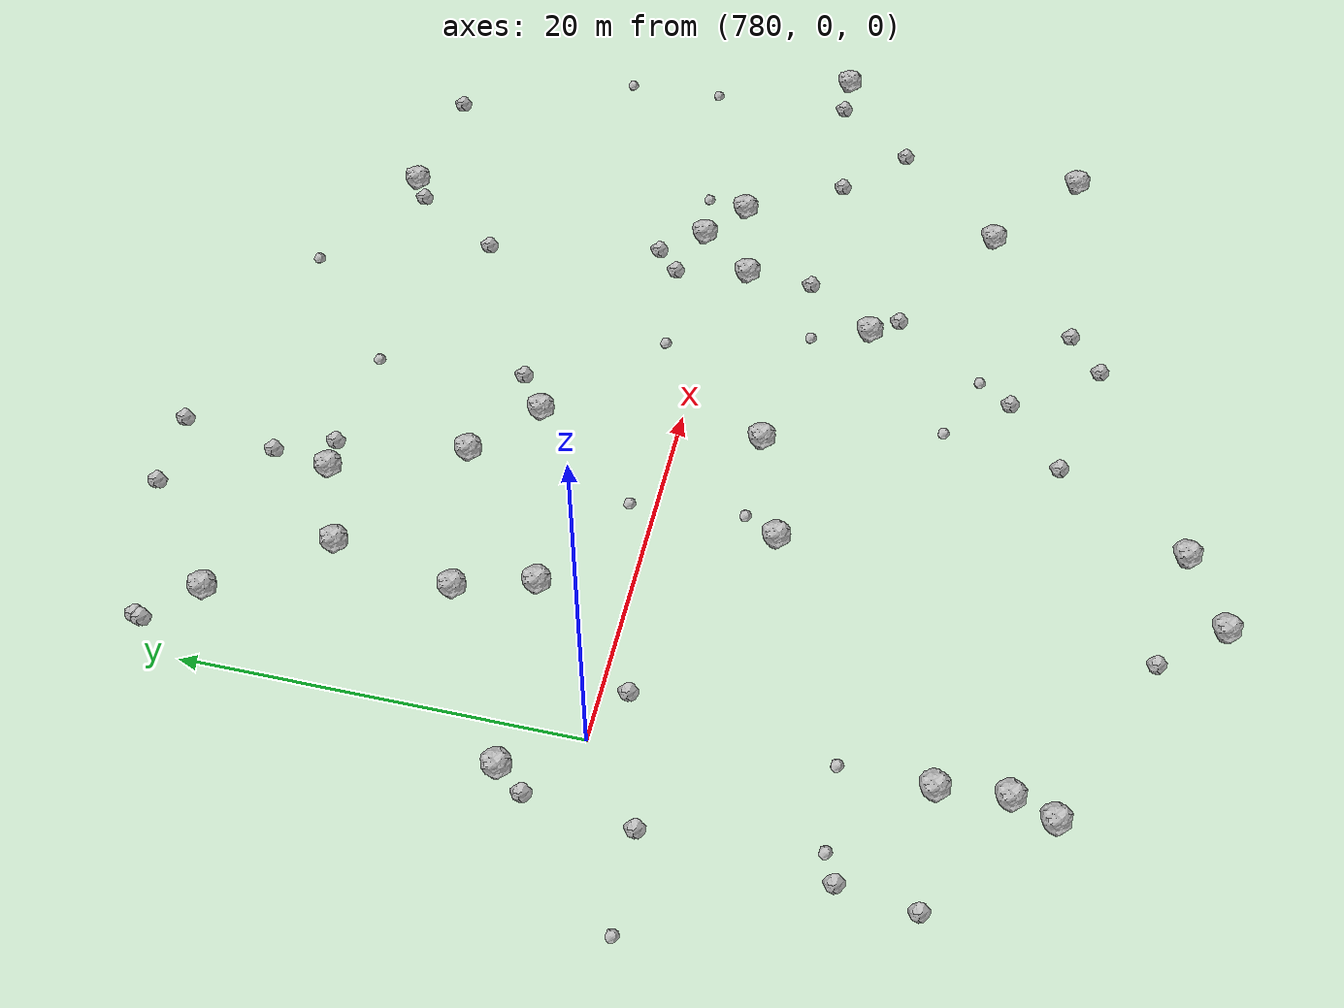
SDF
<sdf version="1.6">
 <world name="default">
  <include><uri>model://sun</uri></include>
  <model name="rock1_20_4">
   <include><uri>model://rock1</uri><pose>817.1224917661738 -14.53595655599581 0.5 0 0 0</pose></include>
  </model>
  <model name="rock1_20_5">
   <include><uri>model://rock1</uri><pose>795.3012775648016 10.349661118491063 0.5 0 0 0</pose></include>
  </model>
  <model name="rock1_20_6">
   <include><uri>model://rock1</uri><pose>814.6466081324529 19.4029380888462 0.5 0 0 0</pose></include>
  </model>
  <model name="rock1_20_7">
   <include><uri>model://rock1</uri><pose>793.2897878017257 -6.269274135358934 0.5 0 0 0</pose></include>
  </model>
  <model name="rock1_20_8">
   <include><uri>model://rock1</uri><pose>781.0698912981006 -15.767370860800705 0.5 0 0 0</pose></include>
  </model>
  <model name="rock1_20_9">
   <include><uri>model://rock1</uri><pose>780.6052081279984 -21.19739651310606 0.5 0 0 0</pose></include>
  </model>
  <model name="rock1_20_10">
   <include><uri>model://rock1</uri><pose>829.2237038841938 -4.215011108209335 0.5 0 0 0</pose></include>
  </model>
  <model name="rock1_20_11">
   <include><uri>model://rock1</uri><pose>798.827482866229 7.421920555097763 0.5 0 0 0</pose></include>
  </model>
  <model name="rock1_20_12">
   <include><uri>model://rock1</uri><pose>796.58776794456 -26.29863864488645 0.5 0 0 0</pose></include>
  </model>
  <model name="rock1_20_13">
   <include><uri>model://rock1</uri><pose>786.8276947183805 8.583284964486026 0.5 0 0 0</pose></include>
  </model>
  <model name="rock1_20_14">
   <include><uri>model://rock1</uri><pose>784.0911206813414 20.409639216131502 0.5 0 0 0</pose></include>
  </model>
  <model name="rock1_20_15">
   <include><uri>model://rock1</uri><pose>813.8706391526716 1.7867614808405925 0.5 0 0 0</pose></include>
  </model>
  <model name="rock1_20_16">
   <include><uri>model://rock1</uri><pose>808.2565954322862 -8.681668934517056 0.5 0 0 0</pose></include>
  </model>
  <model name="rock1_20_17">
   <include><uri>model://rock1</uri><pose>792.5372435567967 -28.296189592713503 0.5 0 0 0</pose></include>
  </model>
  <model name="rock1_20_18">
   <include><uri>model://rock1</uri><pose>788.0028265374714 4.6333711386722385 0.5 0 0 0</pose></include>
  </model>
  <model name="rock1_20_19">
   <include><uri>model://rock1</uri><pose>816.4641023202817 -0.09337423434909908 0.5 0 0 0</pose></include>
  </model>
  <model name="rock1_20_20">
   <include><uri>model://rock1</uri><pose>777.8139912303105 3.657323488657326 0.5 0 0 0</pose></include>
  </model>
  <model name="rock1_20_21">
   <include><uri>model://rock1</uri><pose>792.63029581026 17.057529248131637 0.5 0 0 0</pose></include>
  </model>
  <model name="rock1_20_22">
   <include><uri>model://rock1</uri><pose>822.9013070137707 -18.84786015995737 0.5 0 0 0</pose></include>
  </model>
  <model name="rock1_20_23">
   <include><uri>model://rock1</uri><pose>799.424600319515 -4.34023030666037 0.5 0 0 0</pose></include>
  </model>
  <model name="rock1_20_24">
   <include><uri>model://rock1</uri><pose>781.3450159684279 -19.128096362707893 0.5 0 0 0</pose></include>
  </model>
  <model name="rock1_20_25">
   <include><uri>model://rock1</uri><pose>811.2728402609441 -1.2272462079208637 0.5 0 0 0</pose></include>
  </model>
  <model name="rock1_20_26">
   <include><uri>model://rock1</uri><pose>788.1570540005966 15.115927083412103 0.5 0 0 0</pose></include>
  </model>
  <model name="rock2_20_0">
   <include><uri>model://rock2</uri><pose>807.9035061126091 -21.248724070409153 0.3 0 0 0</pose></include>
  </model>
  <model name="rock2_20_1">
   <include><uri>model://rock2</uri><pose>793.0543763805825 20.22930619512948 0.3 0 0 0</pose></include>
  </model>
  <model name="rock2_20_2">
   <include><uri>model://rock2</uri><pose>781.8455594256545 23.01855285527072 0.3 0 0 0</pose></include>
  </model>
  <model name="rock2_20_3">
   <include><uri>model://rock2</uri><pose>782.81893966964 -1.235945321421525 0.3 0 0 0</pose></include>
  </model>
  <model name="rock2_20_4">
   <include><uri>model://rock2</uri><pose>821.8501460380811 18.837037727384796 0.3 0 0 0</pose></include>
  </model>
  <model name="rock2_20_5">
   <include><uri>model://rock2</uri><pose>804.5463375458806 -16.75705893415054 0.3 0 0 0</pose></include>
  </model>
  <model name="rock2_20_6">
   <include><uri>model://rock2</uri><pose>800.7145015940188 -19.681496977243736 0.3 0 0 0</pose></include>
  </model>
  <model name="rock2_20_7">
   <include><uri>model://rock2</uri><pose>776.0652929255436 -3.1812625646454435 0.3 0 0 0</pose></include>
  </model>
  <model name="rock2_20_8">
   <include><uri>model://rock2</uri><pose>822.9982509934224 -8.625214022687008 0.3 0 0 0</pose></include>
  </model>
  <model name="rock2_20_9">
   <include><uri>model://rock2</uri><pose>776.6729390133246 2.1970031824449805 0.3 0 0 0</pose></include>
  </model>
  <model name="rock2_20_10">
   <include><uri>model://rock2</uri><pose>810.5169853912846 2.766996444946706 0.3 0 0 0</pose></include>
  </model>
  <model name="rock2_20_11">
   <include><uri>model://rock2</uri><pose>826.5807021749115 -4.290698075463084 0.3 0 0 0</pose></include>
  </model>
  <model name="rock2_20_12">
   <include><uri>model://rock2</uri><pose>811.0405131460179 -4.9298376907857 0.3 0 0 0</pose></include>
  </model>
  <model name="rock2_20_13">
   <include><uri>model://rock2</uri><pose>794.0464233357199 25.548167343345973 0.3 0 0 0</pose></include>
  </model>
  <model name="rock2_20_14">
   <include><uri>model://rock2</uri><pose>819.4958780863229 -5.359662115078379 0.3 0 0 0</pose></include>
  </model>
  <model name="rock2_20_15">
   <include><uri>model://rock2</uri><pose>810.1975995491104 -19.50572154692761 0.3 0 0 0</pose></include>
  </model>
  <model name="rock2_20_16">
   <include><uri>model://rock2</uri><pose>781.7234478850592 22.660395002652038 0.3 0 0 0</pose></include>
  </model>
  <model name="rock2_20_17">
   <include><uri>model://rock2</uri><pose>789.7866551336268 25.29577867958001 0.3 0 0 0</pose></include>
  </model>
  <model name="rock2_20_18">
   <include><uri>model://rock2</uri><pose>810.1152358559754 13.647365035134392 0.3 0 0 0</pose></include>
  </model>
  <model name="rock2_20_19">
   <include><uri>model://rock2</uri><pose>775.4314761684968 -12.158212734465863 0.3 0 0 0</pose></include>
  </model>
  <model name="rock2_20_20">
   <include><uri>model://rock2</uri><pose>813.1893607720594 18.556848573935156 0.3 0 0 0</pose></include>
  </model>
  <model name="rock2_20_21">
   <include><uri>model://rock2</uri><pose>789.7639252298054 -25.156288051014748 0.3 0 0 0</pose></include>
  </model>
  <model name="rock2_20_22">
   <include><uri>model://rock2</uri><pose>811.9277721351962 4.044652100035428 0.3 0 0 0</pose></include>
  </model>
  <model name="rock2_20_23">
   <include><uri>model://rock2</uri><pose>774.9274360446801 -15.905295548579303 0.3 0 0 0</pose></include>
  </model>
  <model name="rock2_20_24">
   <include><uri>model://rock2</uri><pose>794.2985142453043 17.286650049239817 0.3 0 0 0</pose></include>
  </model>
  <model name="rock2_20_25">
   <include><uri>model://rock2</uri><pose>809.317513138454 -10.15259888472977 0.3 0 0 0</pose></include>
  </model>
  <model name="rock2_20_26">
   <include><uri>model://rock2</uri><pose>800.8914199938099 8.953647267893757 0.3 0 0 0</pose></include>
  </model>
  <model name="rock3_20_0">
   <include><uri>model://rock3</uri><pose>807.0401675823642 22.824889433096523 0.2 0 0 0</pose></include>
  </model>
  <model name="rock3_20_1">
   <include><uri>model://rock3</uri><pose>826.0534081189952 8.974912377144314 0.2 0 0 0</pose></include>
  </model>
  <model name="rock3_20_2">
   <include><uri>model://rock3</uri><pose>794.2068873698138 -4.539527016401159 0.2 0 0 0</pose></include>
  </model>
  <model name="rock3_20_3">
   <include><uri>model://rock3</uri><pose>826.2585907123868 3.5311447774518285 0.2 0 0 0</pose></include>
  </model>
  <model name="rock3_20_4">
   <include><uri>model://rock3</uri><pose>804.9347234100281 2.0379793757770273 0.2 0 0 0</pose></include>
  </model>
  <model name="rock3_20_5">
   <include><uri>model://rock3</uri><pose>805.7960705706525 -15.043445404737634 0.2 0 0 0</pose></include>
  </model>
  <model name="rock3_20_6">
   <include><uri>model://rock3</uri><pose>771.0350041439842 -3.4140890213499624 0.2 0 0 0</pose></include>
  </model>
  <model name="rock3_20_7">
   <include><uri>model://rock3</uri><pose>801.8336369264678 -13.59742822737903 0.2 0 0 0</pose></include>
  </model>
  <model name="rock3_20_8">
   <include><uri>model://rock3</uri><pose>816.7776337540379 2.1009626139585933 0.2 0 0 0</pose></include>
  </model>
  <model name="rock3_20_9">
   <include><uri>model://rock3</uri><pose>776.824099953806 -11.567419364586183 0.2 0 0 0</pose></include>
  </model>
  <model name="rock3_20_10">
   <include><uri>model://rock3</uri><pose>781.174120431441 -11.35953839428361 0.2 0 0 0</pose></include>
  </model>
  <model name="rock3_20_11">
   <include><uri>model://rock3</uri><pose>807.0621770846952 -5.632663247815241 0.2 0 0 0</pose></include>
  </model>
  <model name="rock3_20_12">
   <include><uri>model://rock3</uri><pose>800.3283523877955 16.91009213760863 0.2 0 0 0</pose></include>
  </model>
  <model name="rock3_20_13">
   <include><uri>model://rock3</uri><pose>807.9990934618186 -8.849989605787094 0.2 0 0 0</pose></include>
  </model>
  <model name="rock3_20_14">
   <include><uri>model://rock3</uri><pose>793.6913679087421 1.337732882925458 0.2 0 0 0</pose></include>
  </model>
 </world>
</sdf>
